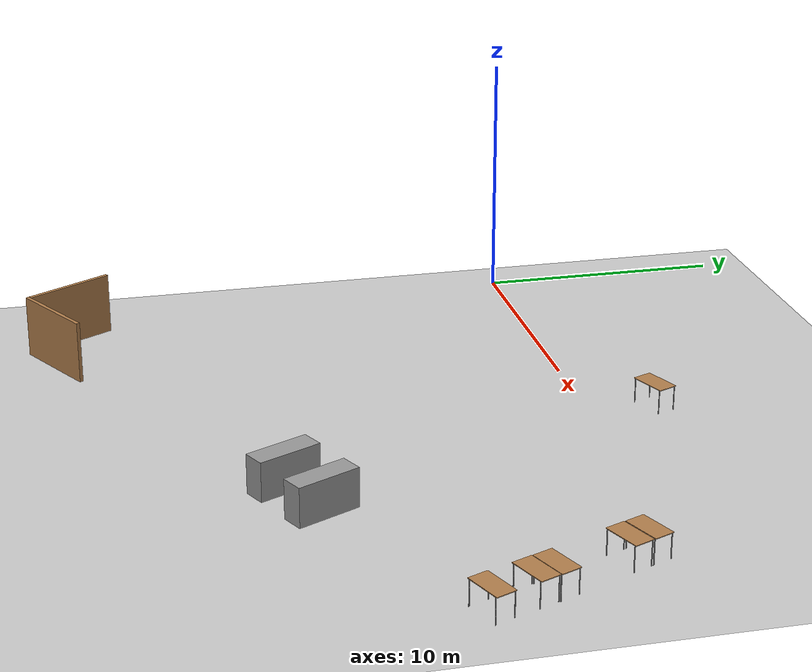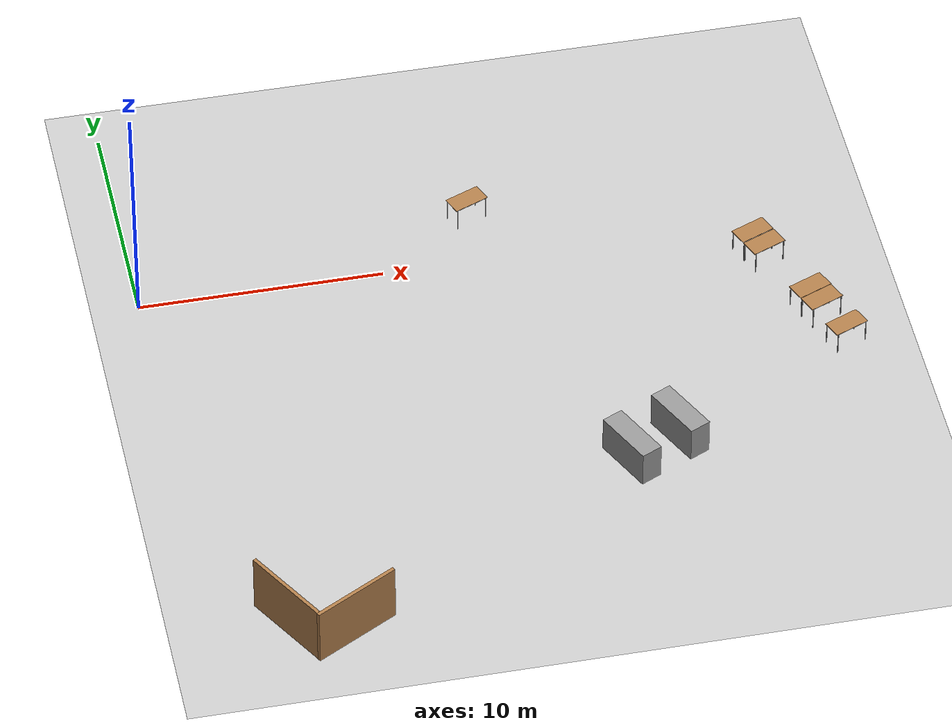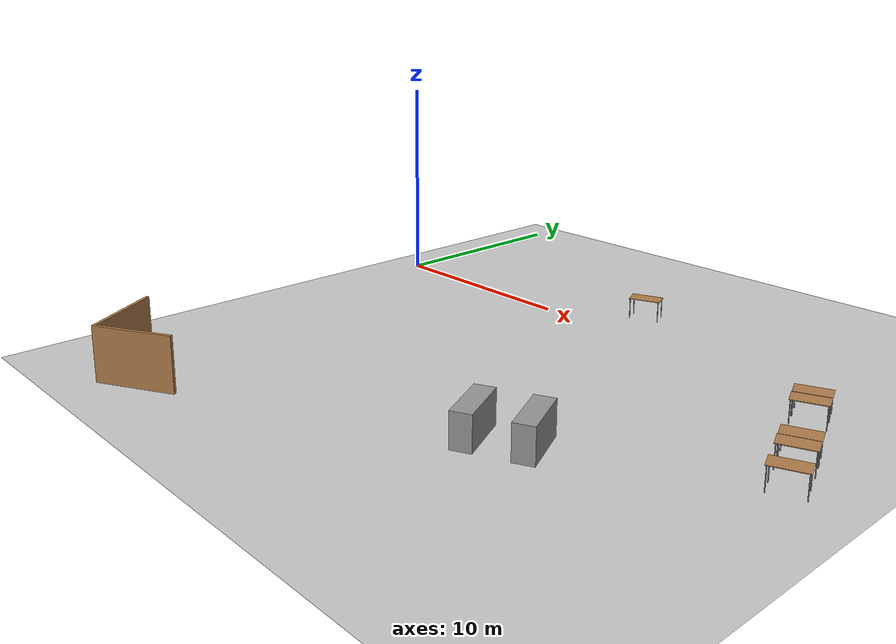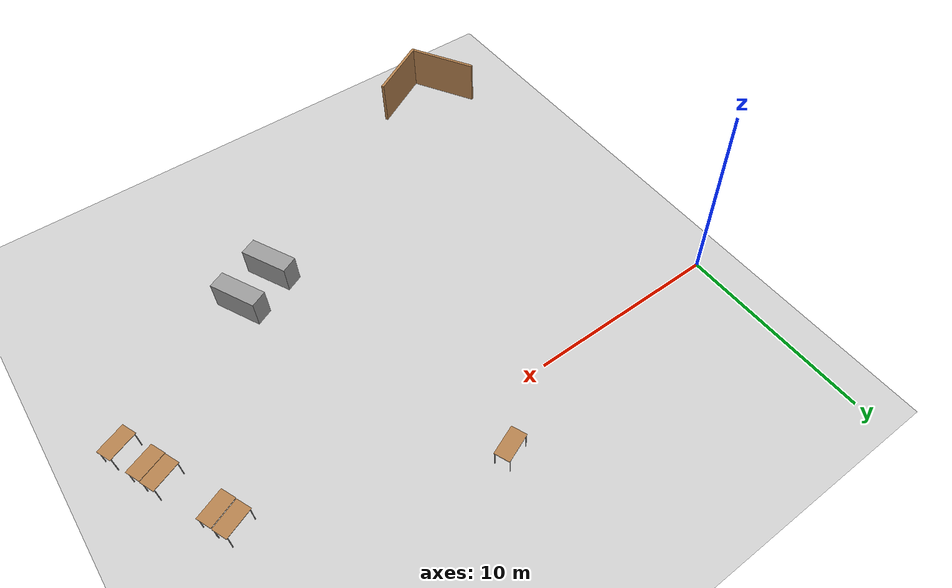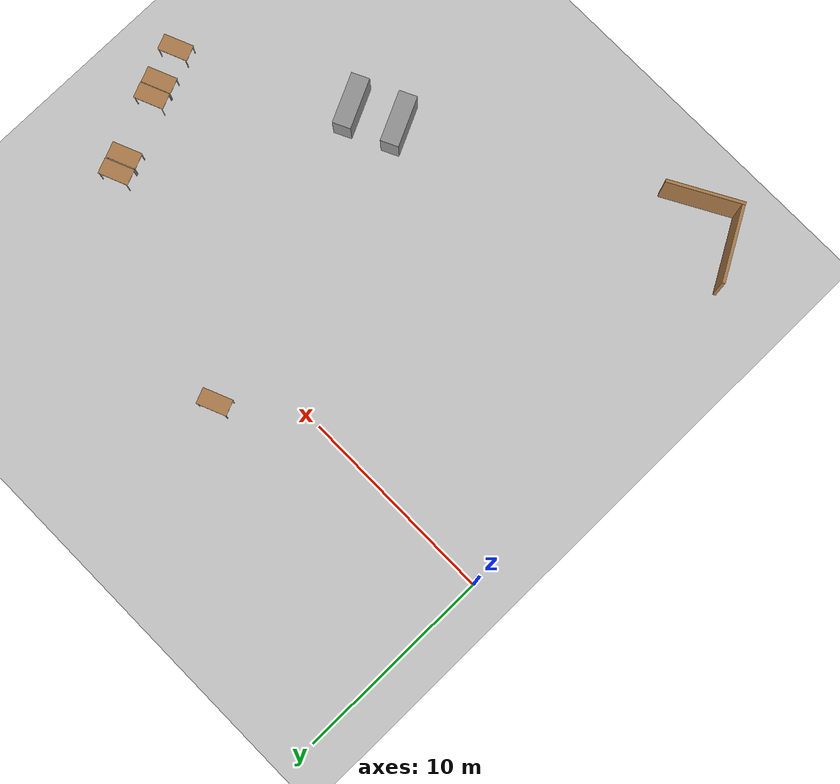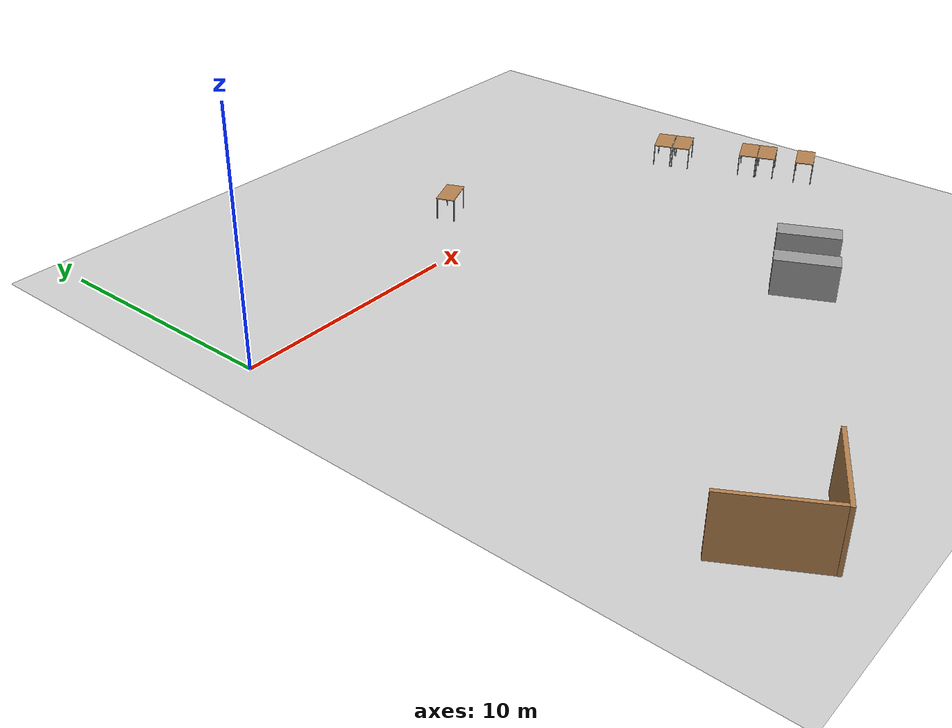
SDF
<sdf version="1.10">
 <world name="maze">
  <model name="ground_plane">
   <static>true</static>
   <link name="link">
    <collision name="collision">
     <geometry><plane><normal>0 0 1</normal><size>100 100</size></plane></geometry>
    </collision>
    <visual name="visual">
     <geometry><plane><normal>0 0 1</normal><size>100 100</size></plane></geometry>
     <material>
      <ambient>0.800000012 0.800000012 0.800000012 1</ambient>
      <diffuse>0.800000012 0.800000012 0.800000012 1</diffuse>
      <specular>0.800000012 0.800000012 0.800000012 1</specular>
     </material>
     <plugin name="__default__" filename="__default__"/>
    </visual>
    <inertial>
     <mass>1</mass>
     <inertia><ixx>1</ixx><ixy>0</ixy><ixz>0</ixz><iyy>1</iyy><iyz>0</iyz><izz>1</izz></inertia>
    </inertial>
   </link>
   <plugin name="__default__" filename="__default__"/>
  </model>
  <model name="Wall_40_new">
   <static>true</static>
   <pose>2.6091833114624023 -18.863498687744141 0 0 0 -1.0472000210755694</pose>
   <link name="link">
    <collision name="collision">
     <geometry><box><size>3.75 0.14999999999999999 2.5</size></box></geometry>
     <pose>0 0 1.25 0 0 0</pose>
    </collision>
    <visual name="visual">
     <pose>0 0 1.25 0 0 0</pose>
     <geometry><box><size>3.75 0.14999999999999999 2.5</size></box></geometry>
     <material>
      <script><uri>file:///usr/share/gz/gz-sim8/media/gazebo.material</uri><name>Gazebo/Wood</name></script>
      <ambient>1 1 1 1</ambient>
     </material>
    </visual>
    <inertial>
     <mass>1</mass>
     <inertia><ixx>1</ixx><ixy>0</ixy><ixz>0</ixz><iyy>1</iyy><iyz>0</iyz><izz>1</izz></inertia>
    </inertial>
   </link>
  </model>
  <model name="table_0_clone_1">
   <static>true</static>
   <link name="link">
    <collision name="surface">
     <pose>0 0 1 0 0 0</pose>
     <geometry><box><size>1.5 0.80000000000000004 0.029999999999999999</size></box></geometry>
     <surface><friction><ode><mu>0.59999999999999998</mu><mu2>0.59999999999999998</mu2></ode></friction></surface>
    </collision>
    <visual name="visual1">
     <pose>0 0 1 0 0 0</pose>
     <geometry><box><size>1.5 0.80000000000000004 0.029999999999999999</size></box></geometry>
     <material>
      <script><uri>file:///usr/share/gz/gz-sim8/media/gazebo.material</uri><name>Gazebo/Wood</name></script>
     </material>
    </visual>
    <collision name="front_left_leg">
     <pose>0.68000000000000005 0.38 0.5 0 0 0</pose>
     <geometry><cylinder><radius>0.02</radius><length>1</length></cylinder></geometry>
    </collision>
    <visual name="front_left_leg">
     <pose>0.68000000000000005 0.38 0.5 0 0 0</pose>
     <geometry><cylinder><radius>0.02</radius><length>1</length></cylinder></geometry>
     <material>
      <script><uri>file:///usr/share/gz/gz-sim8/media/gazebo.material</uri><name>Gazebo/Grey</name></script>
     </material>
    </visual>
    <collision name="front_right_leg">
     <pose>0.68000000000000005 -0.38 0.5 0 0 0</pose>
     <geometry><cylinder><radius>0.02</radius><length>1</length></cylinder></geometry>
    </collision>
    <visual name="front_right_leg">
     <pose>0.68000000000000005 -0.38 0.5 0 0 0</pose>
     <geometry><cylinder><radius>0.02</radius><length>1</length></cylinder></geometry>
     <material>
      <script><uri>file:///usr/share/gz/gz-sim8/media/gazebo.material</uri><name>Gazebo/Grey</name></script>
     </material>
    </visual>
    <collision name="back_right_leg">
     <pose>-0.68000000000000005 -0.38 0.5 0 0 0</pose>
     <geometry><cylinder><radius>0.02</radius><length>1</length></cylinder></geometry>
    </collision>
    <visual name="back_right_leg">
     <pose>-0.68000000000000005 -0.38 0.5 0 0 0</pose>
     <geometry><cylinder><radius>0.02</radius><length>1</length></cylinder></geometry>
     <material>
      <script><uri>file:///usr/share/gz/gz-sim8/media/gazebo.material</uri><name>Gazebo/Grey</name></script>
     </material>
    </visual>
    <collision name="back_left_leg">
     <pose>-0.68000000000000005 0.38 0.5 0 0 0</pose>
     <geometry><cylinder><radius>0.02</radius><length>1</length></cylinder></geometry>
    </collision>
    <visual name="back_left_leg">
     <pose>-0.68000000000000005 0.38 0.5 0 0 0</pose>
     <geometry><cylinder><radius>0.02</radius><length>1</length></cylinder></geometry>
     <material>
      <script><uri>file:///usr/share/gz/gz-sim8/media/gazebo.material</uri><name>Gazebo/Grey</name></script>
     </material>
    </visual>
    <inertial>
     <mass>1</mass>
     <inertia><ixx>1</ixx><ixy>0</ixy><ixz>0</ixz><iyy>1</iyy><iyz>0</iyz><izz>1</izz></inertia>
    </inertial>
   </link>
   <pose>13.972799999999999 2.6148899999999999 0 0 0 0.39148299999999986</pose>
  </model>
  <model name="table_0_clone_1_1">
   <static>true</static>
   <link name="link">
    <collision name="surface">
     <pose>0 0 1 0 0 0</pose>
     <geometry><box><size>1.5 0.80000000000000004 0.029999999999999999</size></box></geometry>
     <surface><friction><ode><mu>0.59999999999999998</mu><mu2>0.59999999999999998</mu2></ode></friction></surface>
    </collision>
    <visual name="visual1">
     <pose>0 0 1 0 0 0</pose>
     <geometry><box><size>1.5 0.80000000000000004 0.029999999999999999</size></box></geometry>
     <material>
      <script><uri>file:///usr/share/gz/gz-sim8/media/gazebo.material</uri><name>Gazebo/Wood</name></script>
     </material>
    </visual>
    <collision name="front_left_leg">
     <pose>0.68000000000000005 0.38 0.5 0 0 0</pose>
     <geometry><cylinder><radius>0.02</radius><length>1</length></cylinder></geometry>
    </collision>
    <visual name="front_left_leg">
     <pose>0.68000000000000005 0.38 0.5 0 0 0</pose>
     <geometry><cylinder><radius>0.02</radius><length>1</length></cylinder></geometry>
     <material>
      <script><uri>file:///usr/share/gz/gz-sim8/media/gazebo.material</uri><name>Gazebo/Grey</name></script>
     </material>
    </visual>
    <collision name="front_right_leg">
     <pose>0.68000000000000005 -0.38 0.5 0 0 0</pose>
     <geometry><cylinder><radius>0.02</radius><length>1</length></cylinder></geometry>
    </collision>
    <visual name="front_right_leg">
     <pose>0.68000000000000005 -0.38 0.5 0 0 0</pose>
     <geometry><cylinder><radius>0.02</radius><length>1</length></cylinder></geometry>
     <material>
      <script><uri>file:///usr/share/gz/gz-sim8/media/gazebo.material</uri><name>Gazebo/Grey</name></script>
     </material>
    </visual>
    <collision name="back_right_leg">
     <pose>-0.68000000000000005 -0.38 0.5 0 0 0</pose>
     <geometry><cylinder><radius>0.02</radius><length>1</length></cylinder></geometry>
    </collision>
    <visual name="back_right_leg">
     <pose>-0.68000000000000005 -0.38 0.5 0 0 0</pose>
     <geometry><cylinder><radius>0.02</radius><length>1</length></cylinder></geometry>
     <material>
      <script><uri>file:///usr/share/gz/gz-sim8/media/gazebo.material</uri><name>Gazebo/Grey</name></script>
     </material>
    </visual>
    <collision name="back_left_leg">
     <pose>-0.68000000000000005 0.38 0.5 0 0 0</pose>
     <geometry><cylinder><radius>0.02</radius><length>1</length></cylinder></geometry>
    </collision>
    <visual name="back_left_leg">
     <pose>-0.68000000000000005 0.38 0.5 0 0 0</pose>
     <geometry><cylinder><radius>0.02</radius><length>1</length></cylinder></geometry>
     <material>
      <script><uri>file:///usr/share/gz/gz-sim8/media/gazebo.material</uri><name>Gazebo/Grey</name></script>
     </material>
    </visual>
    <inertial>
     <mass>1</mass>
     <inertia><ixx>1</ixx><ixy>0</ixy><ixz>0</ixz><iyy>1</iyy><iyz>0</iyz><izz>1</izz></inertia>
    </inertial>
   </link>
   <pose>26.739439386883607 -5.8970177628243707 0 0 0 0.39148302161510867</pose>
  </model>
  <model name="table_0_clone_1_2">
   <static>true</static>
   <link name="link">
    <collision name="surface">
     <pose>0 0 1 0 0 0</pose>
     <geometry><box><size>1.5 0.80000000000000004 0.029999999999999999</size></box></geometry>
     <surface><friction><ode><mu>0.59999999999999998</mu><mu2>0.59999999999999998</mu2></ode></friction></surface>
    </collision>
    <visual name="visual1">
     <pose>0 0 1 0 0 0</pose>
     <geometry><box><size>1.5 0.80000000000000004 0.029999999999999999</size></box></geometry>
     <material>
      <script><uri>file:///usr/share/gz/gz-sim8/media/gazebo.material</uri><name>Gazebo/Wood</name></script>
     </material>
    </visual>
    <collision name="front_left_leg">
     <pose>0.68000000000000005 0.38 0.5 0 0 0</pose>
     <geometry><cylinder><radius>0.02</radius><length>1</length></cylinder></geometry>
    </collision>
    <visual name="front_left_leg">
     <pose>0.68000000000000005 0.38 0.5 0 0 0</pose>
     <geometry><cylinder><radius>0.02</radius><length>1</length></cylinder></geometry>
     <material>
      <script><uri>file:///usr/share/gz/gz-sim8/media/gazebo.material</uri><name>Gazebo/Grey</name></script>
     </material>
    </visual>
    <collision name="front_right_leg">
     <pose>0.68000000000000005 -0.38 0.5 0 0 0</pose>
     <geometry><cylinder><radius>0.02</radius><length>1</length></cylinder></geometry>
    </collision>
    <visual name="front_right_leg">
     <pose>0.68000000000000005 -0.38 0.5 0 0 0</pose>
     <geometry><cylinder><radius>0.02</radius><length>1</length></cylinder></geometry>
     <material>
      <script><uri>file:///usr/share/gz/gz-sim8/media/gazebo.material</uri><name>Gazebo/Grey</name></script>
     </material>
    </visual>
    <collision name="back_right_leg">
     <pose>-0.68000000000000005 -0.38 0.5 0 0 0</pose>
     <geometry><cylinder><radius>0.02</radius><length>1</length></cylinder></geometry>
    </collision>
    <visual name="back_right_leg">
     <pose>-0.68000000000000005 -0.38 0.5 0 0 0</pose>
     <geometry><cylinder><radius>0.02</radius><length>1</length></cylinder></geometry>
     <material>
      <script><uri>file:///usr/share/gz/gz-sim8/media/gazebo.material</uri><name>Gazebo/Grey</name></script>
     </material>
    </visual>
    <collision name="back_left_leg">
     <pose>-0.68000000000000005 0.38 0.5 0 0 0</pose>
     <geometry><cylinder><radius>0.02</radius><length>1</length></cylinder></geometry>
    </collision>
    <visual name="back_left_leg">
     <pose>-0.68000000000000005 0.38 0.5 0 0 0</pose>
     <geometry><cylinder><radius>0.02</radius><length>1</length></cylinder></geometry>
     <material>
      <script><uri>file:///usr/share/gz/gz-sim8/media/gazebo.material</uri><name>Gazebo/Grey</name></script>
     </material>
    </visual>
    <inertial>
     <mass>1</mass>
     <inertia><ixx>1</ixx><ixy>0</ixy><ixz>0</ixz><iyy>1</iyy><iyz>0</iyz><izz>1</izz></inertia>
    </inertial>
   </link>
   <pose>26.443804289956802 -5.1302925006380224 0 0 0 0.39148302161510867</pose>
  </model>
  <model name="table_0_clone_1_3">
   <static>true</static>
   <link name="link">
    <collision name="surface">
     <pose>0 0 1 0 0 0</pose>
     <geometry><box><size>1.5 0.80000000000000004 0.029999999999999999</size></box></geometry>
     <surface><friction><ode><mu>0.59999999999999998</mu><mu2>0.59999999999999998</mu2></ode></friction></surface>
    </collision>
    <visual name="visual1">
     <pose>0 0 1 0 0 0</pose>
     <geometry><box><size>1.5 0.80000000000000004 0.029999999999999999</size></box></geometry>
     <material>
      <script><uri>file:///usr/share/gz/gz-sim8/media/gazebo.material</uri><name>Gazebo/Wood</name></script>
     </material>
    </visual>
    <collision name="front_left_leg">
     <pose>0.68000000000000005 0.38 0.5 0 0 0</pose>
     <geometry><cylinder><radius>0.02</radius><length>1</length></cylinder></geometry>
    </collision>
    <visual name="front_left_leg">
     <pose>0.68000000000000005 0.38 0.5 0 0 0</pose>
     <geometry><cylinder><radius>0.02</radius><length>1</length></cylinder></geometry>
     <material>
      <script><uri>file:///usr/share/gz/gz-sim8/media/gazebo.material</uri><name>Gazebo/Grey</name></script>
     </material>
    </visual>
    <collision name="front_right_leg">
     <pose>0.68000000000000005 -0.38 0.5 0 0 0</pose>
     <geometry><cylinder><radius>0.02</radius><length>1</length></cylinder></geometry>
    </collision>
    <visual name="front_right_leg">
     <pose>0.68000000000000005 -0.38 0.5 0 0 0</pose>
     <geometry><cylinder><radius>0.02</radius><length>1</length></cylinder></geometry>
     <material>
      <script><uri>file:///usr/share/gz/gz-sim8/media/gazebo.material</uri><name>Gazebo/Grey</name></script>
     </material>
    </visual>
    <collision name="back_right_leg">
     <pose>-0.68000000000000005 -0.38 0.5 0 0 0</pose>
     <geometry><cylinder><radius>0.02</radius><length>1</length></cylinder></geometry>
    </collision>
    <visual name="back_right_leg">
     <pose>-0.68000000000000005 -0.38 0.5 0 0 0</pose>
     <geometry><cylinder><radius>0.02</radius><length>1</length></cylinder></geometry>
     <material>
      <script><uri>file:///usr/share/gz/gz-sim8/media/gazebo.material</uri><name>Gazebo/Grey</name></script>
     </material>
    </visual>
    <collision name="back_left_leg">
     <pose>-0.68000000000000005 0.38 0.5 0 0 0</pose>
     <geometry><cylinder><radius>0.02</radius><length>1</length></cylinder></geometry>
    </collision>
    <visual name="back_left_leg">
     <pose>-0.68000000000000005 0.38 0.5 0 0 0</pose>
     <geometry><cylinder><radius>0.02</radius><length>1</length></cylinder></geometry>
     <material>
      <script><uri>file:///usr/share/gz/gz-sim8/media/gazebo.material</uri><name>Gazebo/Grey</name></script>
     </material>
    </visual>
    <inertial>
     <mass>1</mass>
     <inertia><ixx>1</ixx><ixy>0</ixy><ixz>0</ixz><iyy>1</iyy><iyz>0</iyz><izz>1</izz></inertia>
    </inertial>
   </link>
   <pose>27.361544148586177 -7.5154429326638379 0 0 0 0.39148302161510867</pose>
  </model>
  <model name="table_0_clone_1_4">
   <static>true</static>
   <link name="link">
    <collision name="surface">
     <pose>0 0 1 0 0 0</pose>
     <geometry><box><size>1.5 0.80000000000000004 0.029999999999999999</size></box></geometry>
     <surface><friction><ode><mu>0.59999999999999998</mu><mu2>0.59999999999999998</mu2></ode></friction></surface>
    </collision>
    <visual name="visual1">
     <pose>0 0 1 0 0 0</pose>
     <geometry><box><size>1.5 0.80000000000000004 0.029999999999999999</size></box></geometry>
     <material>
      <script><uri>file:///usr/share/gz/gz-sim8/media/gazebo.material</uri><name>Gazebo/Wood</name></script>
     </material>
    </visual>
    <collision name="front_left_leg">
     <pose>0.68000000000000005 0.38 0.5 0 0 0</pose>
     <geometry><cylinder><radius>0.02</radius><length>1</length></cylinder></geometry>
    </collision>
    <visual name="front_left_leg">
     <pose>0.68000000000000005 0.38 0.5 0 0 0</pose>
     <geometry><cylinder><radius>0.02</radius><length>1</length></cylinder></geometry>
     <material>
      <script><uri>file:///usr/share/gz/gz-sim8/media/gazebo.material</uri><name>Gazebo/Grey</name></script>
     </material>
    </visual>
    <collision name="front_right_leg">
     <pose>0.68000000000000005 -0.38 0.5 0 0 0</pose>
     <geometry><cylinder><radius>0.02</radius><length>1</length></cylinder></geometry>
    </collision>
    <visual name="front_right_leg">
     <pose>0.68000000000000005 -0.38 0.5 0 0 0</pose>
     <geometry><cylinder><radius>0.02</radius><length>1</length></cylinder></geometry>
     <material>
      <script><uri>file:///usr/share/gz/gz-sim8/media/gazebo.material</uri><name>Gazebo/Grey</name></script>
     </material>
    </visual>
    <collision name="back_right_leg">
     <pose>-0.68000000000000005 -0.38 0.5 0 0 0</pose>
     <geometry><cylinder><radius>0.02</radius><length>1</length></cylinder></geometry>
    </collision>
    <visual name="back_right_leg">
     <pose>-0.68000000000000005 -0.38 0.5 0 0 0</pose>
     <geometry><cylinder><radius>0.02</radius><length>1</length></cylinder></geometry>
     <material>
      <script><uri>file:///usr/share/gz/gz-sim8/media/gazebo.material</uri><name>Gazebo/Grey</name></script>
     </material>
    </visual>
    <collision name="back_left_leg">
     <pose>-0.68000000000000005 0.38 0.5 0 0 0</pose>
     <geometry><cylinder><radius>0.02</radius><length>1</length></cylinder></geometry>
    </collision>
    <visual name="back_left_leg">
     <pose>-0.68000000000000005 0.38 0.5 0 0 0</pose>
     <geometry><cylinder><radius>0.02</radius><length>1</length></cylinder></geometry>
     <material>
      <script><uri>file:///usr/share/gz/gz-sim8/media/gazebo.material</uri><name>Gazebo/Grey</name></script>
     </material>
    </visual>
    <inertial>
     <mass>1</mass>
     <inertia><ixx>1</ixx><ixy>0</ixy><ixz>0</ixz><iyy>1</iyy><iyz>0</iyz><izz>1</izz></inertia>
    </inertial>
   </link>
   <pose>25.233738594584153 -2.2790649815965267 0 0 0 0.39148302161510867</pose>
  </model>
  <model name="table_0_clone_1_4_1">
   <static>true</static>
   <link name="link">
    <collision name="surface">
     <pose>0 0 1 0 0 0</pose>
     <geometry><box><size>1.5 0.80000000000000004 0.029999999999999999</size></box></geometry>
     <surface><friction><ode><mu>0.59999999999999998</mu><mu2>0.59999999999999998</mu2></ode></friction></surface>
    </collision>
    <visual name="visual1">
     <pose>0 0 1 0 0 0</pose>
     <geometry><box><size>1.5 0.80000000000000004 0.029999999999999999</size></box></geometry>
     <material>
      <script><uri>file:///usr/share/gz/gz-sim8/media/gazebo.material</uri><name>Gazebo/Wood</name></script>
     </material>
    </visual>
    <collision name="front_left_leg">
     <pose>0.68000000000000005 0.38 0.5 0 0 0</pose>
     <geometry><cylinder><radius>0.02</radius><length>1</length></cylinder></geometry>
    </collision>
    <visual name="front_left_leg">
     <pose>0.68000000000000005 0.38 0.5 0 0 0</pose>
     <geometry><cylinder><radius>0.02</radius><length>1</length></cylinder></geometry>
     <material>
      <script><uri>file:///usr/share/gz/gz-sim8/media/gazebo.material</uri><name>Gazebo/Grey</name></script>
     </material>
    </visual>
    <collision name="front_right_leg">
     <pose>0.68000000000000005 -0.38 0.5 0 0 0</pose>
     <geometry><cylinder><radius>0.02</radius><length>1</length></cylinder></geometry>
    </collision>
    <visual name="front_right_leg">
     <pose>0.68000000000000005 -0.38 0.5 0 0 0</pose>
     <geometry><cylinder><radius>0.02</radius><length>1</length></cylinder></geometry>
     <material>
      <script><uri>file:///usr/share/gz/gz-sim8/media/gazebo.material</uri><name>Gazebo/Grey</name></script>
     </material>
    </visual>
    <collision name="back_right_leg">
     <pose>-0.68000000000000005 -0.38 0.5 0 0 0</pose>
     <geometry><cylinder><radius>0.02</radius><length>1</length></cylinder></geometry>
    </collision>
    <visual name="back_right_leg">
     <pose>-0.68000000000000005 -0.38 0.5 0 0 0</pose>
     <geometry><cylinder><radius>0.02</radius><length>1</length></cylinder></geometry>
     <material>
      <script><uri>file:///usr/share/gz/gz-sim8/media/gazebo.material</uri><name>Gazebo/Grey</name></script>
     </material>
    </visual>
    <collision name="back_left_leg">
     <pose>-0.68000000000000005 0.38 0.5 0 0 0</pose>
     <geometry><cylinder><radius>0.02</radius><length>1</length></cylinder></geometry>
    </collision>
    <visual name="back_left_leg">
     <pose>-0.68000000000000005 0.38 0.5 0 0 0</pose>
     <geometry><cylinder><radius>0.02</radius><length>1</length></cylinder></geometry>
     <material>
      <script><uri>file:///usr/share/gz/gz-sim8/media/gazebo.material</uri><name>Gazebo/Grey</name></script>
     </material>
    </visual>
    <inertial>
     <mass>1</mass>
     <inertia><ixx>1</ixx><ixy>0</ixy><ixz>0</ixz><iyy>1</iyy><iyz>0</iyz><izz>1</izz></inertia>
    </inertial>
   </link>
   <pose>24.925049812371064 -1.4957804955523417 0 0 0 0.39148302161510867</pose>
  </model>
  <model name="unit_box_clone_clone_clone_clone_1">
   <link name="link">
    <inertial>
     <mass>4.59091</mass>
     <inertia>
      <ixx>4.0056099999999999</ixx>
      <ixy>0</ixy>
      <ixz>0</ixz>
      <iyy>1.8309800000000001</iyy>
      <iyz>0</iyz>
      <izz>2.7995999999999999</izz>
     </inertia>
    </inertial>
    <visual name="visual">
     <geometry><box><size>0.90377099999999999 2.5497000000000001 1.99227</size></box></geometry>
     <material>
      <script><name>Gazebo/Grey</name><uri>file:///usr/share/gz/gz-sim8/media/gazebo.material</uri></script>
      <shader type="pixel"/>
     </material>
     <cast_shadows>false</cast_shadows>
    </visual>
    <collision name="collision">
     <geometry><box><size>0.90377099999999999 2.5497000000000001 1.99227</size></box></geometry>
     <surface>
      <friction>
       <ode><mu>1</mu><mu2>1</mu2><fdir1>0 0 0</fdir1><slip1>0</slip1><slip2>0</slip2></ode>
       <torsional>
        <coefficient>1</coefficient>
        <patch_radius>0</patch_radius>
        <surface_radius>0</surface_radius>
        <use_patch_radius>true</use_patch_radius>
        <ode><slip>0</slip></ode>
       </torsional>
      </friction>
      <bounce><restitution_coefficient>0</restitution_coefficient><threshold>1000000</threshold></bounce>
      <contact>
       <collide_without_contact>false</collide_without_contact>
       <collide_without_contact_bitmask>1</collide_without_contact_bitmask>
       <collide_bitmask>1</collide_bitmask>
       <ode>
        <soft_cfm>0</soft_cfm>
        <soft_erp>0.20000000000000001</soft_erp>
        <kp>10000000000000</kp>
        <kd>1</kd>
        <max_vel>0.01</max_vel>
        <min_depth>0</min_depth>
       </ode>
       <bullet>
        <split_impulse>true</split_impulse>
        <split_impulse_penetration_threshold>-0.01</split_impulse_penetration_threshold>
        <soft_cfm>0</soft_cfm>
        <soft_erp>0.20000000000000001</soft_erp>
        <kp>10000000000000</kp>
        <kd>1</kd>
       </bullet>
      </contact>
     </surface>
    </collision>
   </link>
   <static>false</static>
   <pose>19.674594879150394 -11.463223457336422 0.50210797786712646 -4.7916800059134502e-18 1.0514099671839304e-17 -2.6962799919139395</pose>
  </model>
  <model name="unit_box_clone_clone_clone_clone_3">
   <link name="link">
    <inertial>
     <mass>4.59091</mass>
     <inertia>
      <ixx>4.0056099999999999</ixx>
      <ixy>0</ixy>
      <ixz>0</ixz>
      <iyy>1.8309800000000001</iyy>
      <iyz>0</iyz>
      <izz>2.7995999999999999</izz>
     </inertia>
    </inertial>
    <visual name="visual">
     <geometry><box><size>0.90377099999999999 2.5497000000000001 1.99227</size></box></geometry>
     <material>
      <script><name>Gazebo/Grey</name><uri>file:///usr/share/gz/gz-sim8/media/gazebo.material</uri></script>
      <shader type="pixel"/>
     </material>
     <cast_shadows>false</cast_shadows>
    </visual>
    <collision name="collision">
     <geometry><box><size>0.90377099999999999 2.5497000000000001 1.99227</size></box></geometry>
     <surface>
      <friction>
       <ode><mu>1</mu><mu2>1</mu2><fdir1>0 0 0</fdir1><slip1>0</slip1><slip2>0</slip2></ode>
       <torsional>
        <coefficient>1</coefficient>
        <patch_radius>0</patch_radius>
        <surface_radius>0</surface_radius>
        <use_patch_radius>true</use_patch_radius>
        <ode><slip>0</slip></ode>
       </torsional>
      </friction>
      <bounce><restitution_coefficient>0</restitution_coefficient><threshold>1000000</threshold></bounce>
      <contact>
       <collide_without_contact>false</collide_without_contact>
       <collide_without_contact_bitmask>1</collide_without_contact_bitmask>
       <collide_bitmask>1</collide_bitmask>
       <ode>
        <soft_cfm>0</soft_cfm>
        <soft_erp>0.20000000000000001</soft_erp>
        <kp>10000000000000</kp>
        <kd>1</kd>
        <max_vel>0.01</max_vel>
        <min_depth>0</min_depth>
       </ode>
       <bullet>
        <split_impulse>true</split_impulse>
        <split_impulse_penetration_threshold>-0.01</split_impulse_penetration_threshold>
        <soft_cfm>0</soft_cfm>
        <soft_erp>0.20000000000000001</soft_erp>
        <kp>10000000000000</kp>
        <kd>1</kd>
       </bullet>
      </contact>
     </surface>
    </collision>
   </link>
   <static>false</static>
   <pose>17.51893424987793 -12.437290191650392 0.50210797786712635 -1.7183299730372459e-18 -1.22765996633624e-17 -2.6962799919139395</pose>
  </model>
  <model name="Wall_40_new_1">
   <static>true</static>
   <pose>5.1564102172851562 -19.687471389770508 0.00023685500491410494 0.00037516899245974503 0.0017491100193871756 -2.6368300104762392</pose>
   <link name="link">
    <collision name="collision">
     <geometry><box><size>3.75 0.14999999999999999 2.5</size></box></geometry>
     <pose>0 0 1.25 0 0 0</pose>
    </collision>
    <visual name="visual">
     <pose>0 0 1.25 0 0 0</pose>
     <geometry><box><size>3.75 0.14999999999999999 2.5</size></box></geometry>
     <material>
      <script><uri>file:///usr/share/gz/gz-sim8/media/gazebo.material</uri><name>Gazebo/Wood</name></script>
      <ambient>1 1 1 1</ambient>
     </material>
    </visual>
    <inertial>
     <mass>1</mass>
     <inertia><ixx>1</ixx><ixy>0</ixy><ixz>0</ixz><iyy>1</iyy><iyz>0</iyz><izz>1</izz></inertia>
    </inertial>
   </link>
  </model>
 </world>
</sdf>
